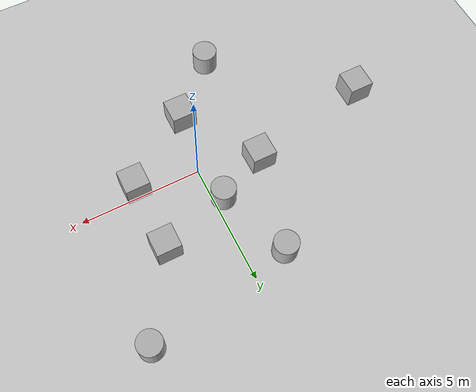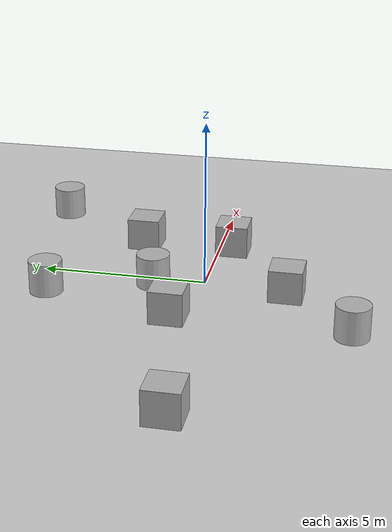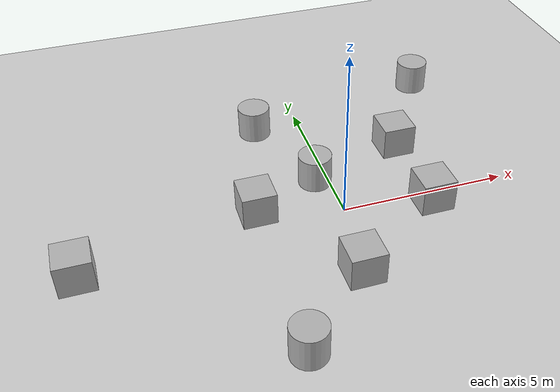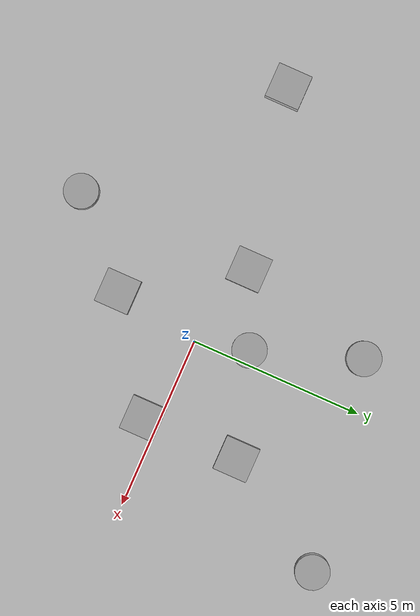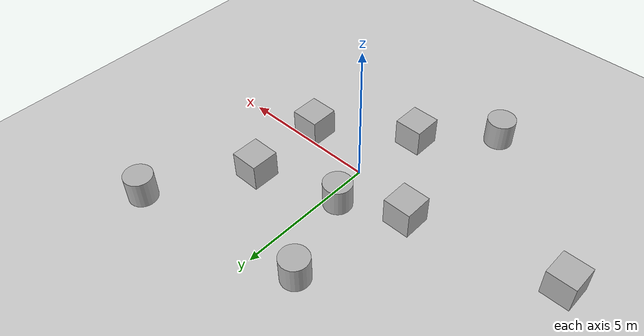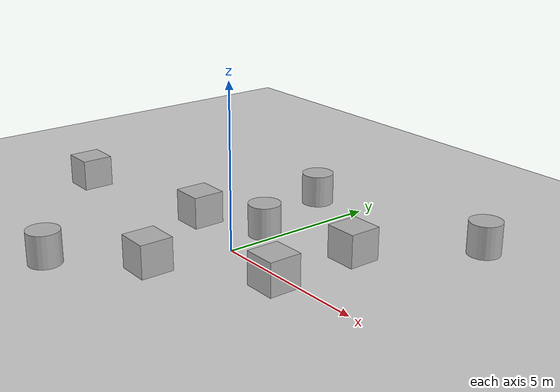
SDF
<sdf version='1.10'>
  <world name='empty'>
    <physics name='1ms' type='ignored'>
      <max_step_size>0.001</max_step_size>
      <real_time_factor>1</real_time_factor>
      <real_time_update_rate>1000</real_time_update_rate>
    </physics>
    <plugin name='gz::sim::systems::Physics' filename='gz-sim-physics-system'/>
    <plugin name='gz::sim::systems::UserCommands' filename='gz-sim-user-commands-system'/>
    <plugin name='gz::sim::systems::SceneBroadcaster' filename='gz-sim-scene-broadcaster-system'/>
    <plugin name='gz::sim::systems::Sensors' filename='gz-sim-sensors-system'>
      <render_engine>ogre2</render_engine>
    </plugin>
    <plugin name='gz::sim::systems::Contact' filename='gz-sim-contact-system'/>
    <gravity>0 0 -9.8000000000000007</gravity>
    <magnetic_field>5.5644999999999998e-06 2.2875799999999999e-05 -4.2388400000000002e-05</magnetic_field>
    <atmosphere type='adiabatic'/>
    <scene>
      <ambient>0.400000006 0.400000006 0.400000006 1</ambient>
      <background>0.699999988 0.699999988 0.699999988 1</background>
      <shadows>true</shadows>
    </scene>
    <model name='ground_plane'>
      <static>true</static>
      <link name='link'>
        <collision name='collision'>
          <geometry>
            <plane>
              <normal>0 0 1</normal>
              <size>100 100</size>
            </plane>
          </geometry>
          <surface>
            <friction>
              <ode/>
            </friction>
            <bounce/>
            <contact/>
          </surface>
        </collision>
        <visual name='visual'>
          <geometry>
            <plane>
              <normal>0 0 1</normal>
              <size>100 100</size>
            </plane>
          </geometry>
          <material>
            <ambient>0.800000012 0.800000012 0.800000012 1</ambient>
            <diffuse>0.800000012 0.800000012 0.800000012 1</diffuse>
            <specular>0.800000012 0.800000012 0.800000012 1</specular>
          </material>
        </visual>
        <pose>0 0 0 0 0 0</pose>
        <inertial>
          <pose>0 0 0 0 0 0</pose>
          <mass>1</mass>
          <inertia>
            <ixx>1</ixx>
            <ixy>0</ixy>
            <ixz>0</ixz>
            <iyy>1</iyy>
            <iyz>0</iyz>
            <izz>1</izz>
          </inertia>
        </inertial>
        <enable_wind>false</enable_wind>
      </link>
      <pose>0 0 0 0 0 0</pose>
      <self_collide>false</self_collide>
    </model>
    <model name='box'>
      <pose>2.5311749917744133 -0.43975510986973054 0.49999999980497606 1.0048033485058014e-21 -2.4640853465547739e-21 -3.9210766489770922e-22</pose>
      <link name='box_link'>
        <inertial>
          <inertia>
            <ixx>0.16666</ixx>
            <ixy>0</ixy>
            <ixz>0</ixz>
            <iyy>0.16666</iyy>
            <iyz>0</iyz>
            <izz>0.16666</izz>
          </inertia>
          <mass>1</mass>
          <pose>0 0 0 0 0 0</pose>
        </inertial>
        <collision name='box_collision'>
          <geometry>
            <box>
              <size>1 1 1</size>
            </box>
          </geometry>
          <surface>
            <friction>
              <ode/>
            </friction>
            <bounce/>
            <contact/>
          </surface>
        </collision>
        <visual name='box_visual'>
          <geometry>
            <box>
              <size>1 1 1</size>
            </box>
          </geometry>
          <material>
            <ambient>0.300000012 0.300000012 0.300000012 1</ambient>
            <diffuse>0.699999988 0.699999988 0.699999988 1</diffuse>
            <specular>1 1 1 1</specular>
          </material>
        </visual>
        <pose>0 0 0 0 0 0</pose>
        <enable_wind>false</enable_wind>
      </link>
      <static>false</static>
      <self_collide>false</self_collide>
    </model>
    <model name='box_0'>
      <pose>2.5085627273503524 2.3998904622275661 0.49999999980497606 1.0048033485058014e-21 -2.4640853465547739e-21 -3.9210766489770922e-22</pose>
      <link name='box_link'>
        <inertial>
          <inertia>
            <ixx>0.16666</ixx>
            <ixy>0</ixy>
            <ixz>0</ixz>
            <iyy>0.16666</iyy>
            <iyz>0</iyz>
            <izz>0.16666</izz>
          </inertia>
          <mass>1</mass>
          <pose>0 0 0 0 0 0</pose>
        </inertial>
        <collision name='box_collision'>
          <geometry>
            <box>
              <size>1 1 1</size>
            </box>
          </geometry>
          <surface>
            <friction>
              <ode/>
            </friction>
            <bounce/>
            <contact/>
          </surface>
        </collision>
        <visual name='box_visual'>
          <geometry>
            <box>
              <size>1 1 1</size>
            </box>
          </geometry>
          <material>
            <ambient>0.300000012 0.300000012 0.300000012 1</ambient>
            <diffuse>0.699999988 0.699999988 0.699999988 1</diffuse>
            <specular>1 1 1 1</specular>
          </material>
        </visual>
        <pose>0 0 0 0 0 0</pose>
        <enable_wind>false</enable_wind>
      </link>
      <static>false</static>
      <self_collide>false</self_collide>
    </model>
    <model name='box_1'>
      <pose>-0.41857565881886438 -2.5101688838774585 0.49999999980497606 1.0048033485058014e-21 -2.4640853465547739e-21 -3.9210766489770922e-22</pose>
      <link name='box_link'>
        <inertial>
          <inertia>
            <ixx>0.16666</ixx>
            <ixy>0</ixy>
            <ixz>0</ixz>
            <iyy>0.16666</iyy>
            <iyz>0</iyz>
            <izz>0.16666</izz>
          </inertia>
          <mass>1</mass>
          <pose>0 0 0 0 0 0</pose>
        </inertial>
        <collision name='box_collision'>
          <geometry>
            <box>
              <size>1 1 1</size>
            </box>
          </geometry>
          <surface>
            <friction>
              <ode/>
            </friction>
            <bounce/>
            <contact/>
          </surface>
        </collision>
        <visual name='box_visual'>
          <geometry>
            <box>
              <size>1 1 1</size>
            </box>
          </geometry>
          <material>
            <ambient>0.300000012 0.300000012 0.300000012 1</ambient>
            <diffuse>0.699999988 0.699999988 0.699999988 1</diffuse>
            <specular>1 1 1 1</specular>
          </material>
        </visual>
        <pose>0 0 0 0 0 0</pose>
        <enable_wind>false</enable_wind>
      </link>
      <static>false</static>
      <self_collide>false</self_collide>
    </model>
    <model name='box_2'>
      <pose>-2.4535543785652036 0.57620784274604808 0.49999999980497606 -3.7752066191875814e-21 -1.1314566264987661e-21 -2.8855935468512302e-22</pose>
      <link name='box_link'>
        <inertial>
          <inertia>
            <ixx>0.16666</ixx>
            <ixy>0</ixy>
            <ixz>0</ixz>
            <iyy>0.16666</iyy>
            <iyz>0</iyz>
            <izz>0.16666</izz>
          </inertia>
          <mass>1</mass>
          <pose>0 0 0 0 0 0</pose>
        </inertial>
        <collision name='box_collision'>
          <geometry>
            <box>
              <size>1 1 1</size>
            </box>
          </geometry>
          <surface>
            <friction>
              <ode/>
            </friction>
            <bounce/>
            <contact/>
          </surface>
        </collision>
        <visual name='box_visual'>
          <geometry>
            <box>
              <size>1 1 1</size>
            </box>
          </geometry>
          <material>
            <ambient>0.300000012 0.300000012 0.300000012 1</ambient>
            <diffuse>0.699999988 0.699999988 0.699999988 1</diffuse>
            <specular>1 1 1 1</specular>
          </material>
        </visual>
        <pose>0 0 0 0 0 0</pose>
        <enable_wind>false</enable_wind>
      </link>
      <static>false</static>
      <self_collide>false</self_collide>
    </model>
    <model name='cylinder'>
      <pose>-0.39677278374040026 1.5042100940213585 0.49999943207967634 -9.0735296729093225e-21 9.1063880664484887e-20 -5.0112238127404451e-20</pose>
      <link name='cylinder_link'>
        <inertial>
          <inertia>
            <ixx>0.14580000000000001</ixx>
            <ixy>0</ixy>
            <ixz>0</ixz>
            <iyy>0.14580000000000001</iyy>
            <iyz>0</iyz>
            <izz>0.125</izz>
          </inertia>
          <mass>1</mass>
          <pose>0 0 0 0 0 0</pose>
        </inertial>
        <collision name='cylinder_collision'>
          <geometry>
            <cylinder>
              <radius>0.5</radius>
              <length>1</length>
            </cylinder>
          </geometry>
          <surface>
            <friction>
              <ode/>
            </friction>
            <bounce/>
            <contact/>
          </surface>
        </collision>
        <visual name='cylinder_visual'>
          <geometry>
            <cylinder>
              <radius>0.5</radius>
              <length>1</length>
            </cylinder>
          </geometry>
          <material>
            <ambient>0.300000012 0.300000012 0.300000012 1</ambient>
            <diffuse>0.699999988 0.699999988 0.699999988 1</diffuse>
            <specular>1 1 1 1</specular>
          </material>
        </visual>
        <pose>0 0 0 0 0 0</pose>
        <enable_wind>false</enable_wind>
      </link>
      <static>false</static>
      <self_collide>false</self_collide>
    </model>
    <model name='cylinder_0'>
      <pose>-1.4762073804107874 4.5100652979628784 0.49999943207967634 -1.721194079149152e-19 2.7285191581885629e-19 5.5998183651320943e-21</pose>
      <link name='cylinder_link'>
        <inertial>
          <inertia>
            <ixx>0.14580000000000001</ixx>
            <ixy>0</ixy>
            <ixz>0</ixz>
            <iyy>0.14580000000000001</iyy>
            <iyz>0</iyz>
            <izz>0.125</izz>
          </inertia>
          <mass>1</mass>
          <pose>0 0 0 0 0 0</pose>
        </inertial>
        <collision name='cylinder_collision'>
          <geometry>
            <cylinder>
              <radius>0.5</radius>
              <length>1</length>
            </cylinder>
          </geometry>
          <surface>
            <friction>
              <ode/>
            </friction>
            <bounce/>
            <contact/>
          </surface>
        </collision>
        <visual name='cylinder_visual'>
          <geometry>
            <cylinder>
              <radius>0.5</radius>
              <length>1</length>
            </cylinder>
          </geometry>
          <material>
            <ambient>0.300000012 0.300000012 0.300000012 1</ambient>
            <diffuse>0.699999988 0.699999988 0.699999988 1</diffuse>
            <specular>1 1 1 1</specular>
          </material>
        </visual>
        <pose>0 0 0 0 0 0</pose>
        <enable_wind>false</enable_wind>
      </link>
      <static>false</static>
      <self_collide>false</self_collide>
    </model>
    <model name='cylinder_1'>
      <pose>4.5311033292013567 5.6056510788863445 0.49999943207967634 2.5070406484591372e-19 -1.3011059881078604e-19 1.2075138122386517e-20</pose>
      <link name='cylinder_link'>
        <inertial>
          <inertia>
            <ixx>0.14580000000000001</ixx>
            <ixy>0</ixy>
            <ixz>0</ixz>
            <iyy>0.14580000000000001</iyy>
            <iyz>0</iyz>
            <izz>0.125</izz>
          </inertia>
          <mass>1</mass>
          <pose>0 0 0 0 0 0</pose>
        </inertial>
        <collision name='cylinder_collision'>
          <geometry>
            <cylinder>
              <radius>0.5</radius>
              <length>1</length>
            </cylinder>
          </geometry>
          <surface>
            <friction>
              <ode/>
            </friction>
            <bounce/>
            <contact/>
          </surface>
        </collision>
        <visual name='cylinder_visual'>
          <geometry>
            <cylinder>
              <radius>0.5</radius>
              <length>1</length>
            </cylinder>
          </geometry>
          <material>
            <ambient>0.300000012 0.300000012 0.300000012 1</ambient>
            <diffuse>0.699999988 0.699999988 0.699999988 1</diffuse>
            <specular>1 1 1 1</specular>
          </material>
        </visual>
        <pose>0 0 0 0 0 0</pose>
        <enable_wind>false</enable_wind>
      </link>
      <static>false</static>
      <self_collide>false</self_collide>
    </model>
    <model name='box_3'>
      <pose>-7.5443499238369824 -0.47934835361232064 0.49999999980497606 1.0048033485058014e-21 -2.4640853465547739e-21 -3.9210766489770922e-22</pose>
      <link name='box_link'>
        <inertial>
          <inertia>
            <ixx>0.16666</ixx>
            <ixy>0</ixy>
            <ixz>0</ixz>
            <iyy>0.16666</iyy>
            <iyz>0</iyz>
            <izz>0.16666</izz>
          </inertia>
          <mass>1</mass>
          <pose>0 0 0 0 0 0</pose>
        </inertial>
        <collision name='box_collision'>
          <geometry>
            <box>
              <size>1 1 1</size>
            </box>
          </geometry>
          <surface>
            <friction>
              <ode/>
            </friction>
            <bounce/>
            <contact/>
          </surface>
        </collision>
        <visual name='box_visual'>
          <geometry>
            <box>
              <size>1 1 1</size>
            </box>
          </geometry>
          <material>
            <ambient>0.300000012 0.300000012 0.300000012 1</ambient>
            <diffuse>0.699999988 0.699999988 0.699999988 1</diffuse>
            <specular>1 1 1 1</specular>
          </material>
        </visual>
        <pose>0 0 0 0 0 0</pose>
        <enable_wind>false</enable_wind>
      </link>
      <static>false</static>
      <self_collide>false</self_collide>
    </model>
    <model name='cylinder_2'>
      <pose>-2.544169774931174 -4.5696860796307996 0.49999943207967634 2.804783110623781e-19 4.243325975098681e-20 -9.2587657201049334e-21</pose>
      <link name='cylinder_link'>
        <inertial>
          <inertia>
            <ixx>0.14580000000000001</ixx>
            <ixy>0</ixy>
            <ixz>0</ixz>
            <iyy>0.14580000000000001</iyy>
            <iyz>0</iyz>
            <izz>0.125</izz>
          </inertia>
          <mass>1</mass>
          <pose>0 0 0 0 0 0</pose>
        </inertial>
        <collision name='cylinder_collision'>
          <geometry>
            <cylinder>
              <radius>0.5</radius>
              <length>1</length>
            </cylinder>
          </geometry>
          <surface>
            <friction>
              <ode/>
            </friction>
            <bounce/>
            <contact/>
          </surface>
        </collision>
        <visual name='cylinder_visual'>
          <geometry>
            <cylinder>
              <radius>0.5</radius>
              <length>1</length>
            </cylinder>
          </geometry>
          <material>
            <ambient>0.300000012 0.300000012 0.300000012 1</ambient>
            <diffuse>0.699999988 0.699999988 0.699999988 1</diffuse>
            <specular>1 1 1 1</specular>
          </material>
        </visual>
        <pose>0 0 0 0 0 0</pose>
        <enable_wind>false</enable_wind>
      </link>
      <static>false</static>
      <self_collide>false</self_collide>
    </model>
    <light name='sun' type='directional'>
      <pose>0 0 10 0 0 0</pose>
      <cast_shadows>true</cast_shadows>
      <intensity>1</intensity>
      <direction>-0.5 0.10000000000000001 -0.90000000000000002</direction>
      <diffuse>0.800000012 0.800000012 0.800000012 1</diffuse>
      <specular>0.200000003 0.200000003 0.200000003 1</specular>
      <attenuation>
        <range>1000</range>
        <linear>0.01</linear>
        <constant>0.90000000000000002</constant>
        <quadratic>0.001</quadratic>
      </attenuation>
      <spot>
        <inner_angle>0</inner_angle>
        <outer_angle>0</outer_angle>
        <falloff>0</falloff>
      </spot>
    </light>
  </world>
</sdf>
